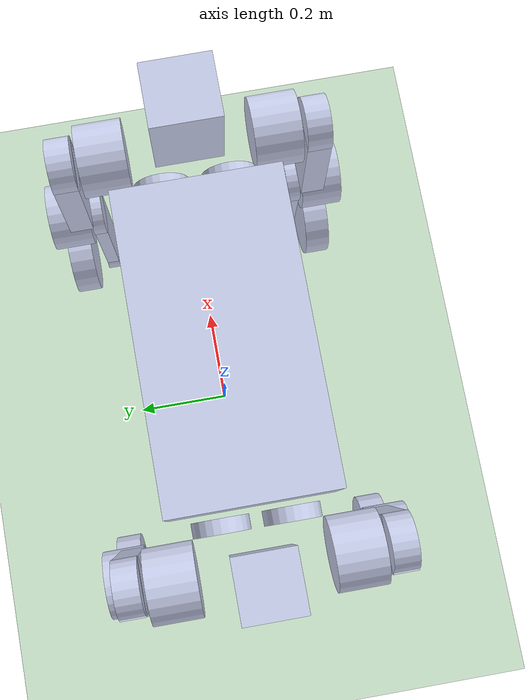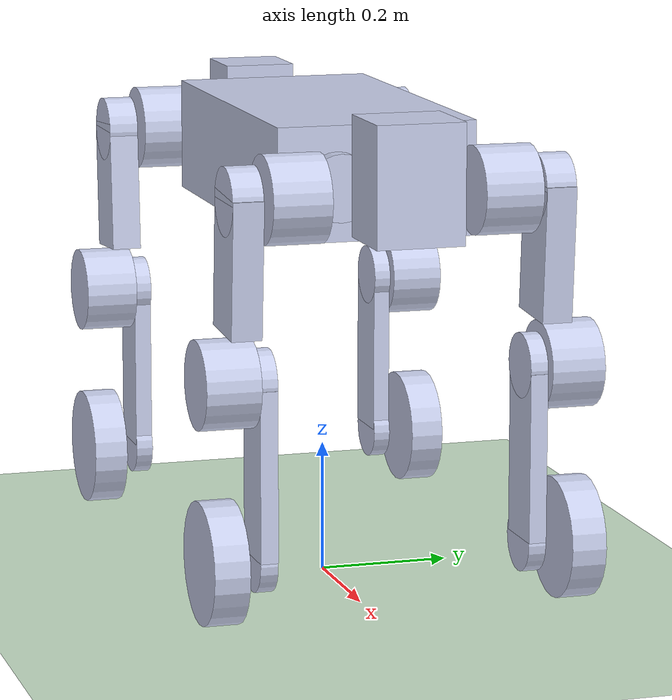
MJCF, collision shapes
<mujoco model="lud1">
  <compiler angle="radian" meshdir="../meshes/"/>

  <default>
      <default class="lud1">
          <geom friction="0.5" margin="0.001"/>
          <joint type="hinge" damping="1" armature="0.1" frictionloss="0.1" limited="true"/>
          <motor ctrlrange="-200 200" />
          <default class="visual">
              <geom type="mesh" contype="0" conaffinity="0" group="2" material="dark"/>
          </default>
          <default class="collision">
              <geom group="0" type="capsule" mass="0" density="0" />
              <default class="foot">
                  <geom type="sphere" priority="1" solimp="0.015 1 0.031" condim="6"  friction="0.8 0.02 0.01" size="0.025" pos="0.019 0 -0.105" quat="1 0 0 0" rgba="0.189804 0.176471 0.129412 1" />
              </default>
          </default>
          <site size="0.001" rgba="0.5 0.5 0.5 0.3" group="4"/>
      </default>
  </default>

  <asset>
    <mesh name="trunk" file="trunk.STL"/>
    <mesh name="FL_link1" file="FL_link1.STL"/>
    <mesh name="FL_link2" file="FL_link2.STL"/>
    <mesh name="FL_link3" file="FL_link3.STL"/>
    <mesh name="FL_foot" file="FL_foot.STL"/>
    <mesh name="FR_link1" file="FR_link1.STL"/>
    <mesh name="FR_link2" file="FR_link2.STL"/>
    <mesh name="FR_link3" file="FR_link3.STL"/>
    <mesh name="FR_foot" file="FR_foot.STL"/>
    <mesh name="HL_link1" file="HL_link1.STL"/>
    <mesh name="HL_link2" file="HL_link2.STL"/>
    <mesh name="HL_link3" file="HL_link3.STL"/>
    <mesh name="HL_foot" file="HL_foot.STL"/>
    <mesh name="HR_link1" file="HR_link1.STL"/>
    <mesh name="HR_link2" file="HR_link2.STL"/>
    <mesh name="HR_link3" file="HR_link3.STL"/>
    <mesh name="HR_foot" file="HR_foot.STL"/>
    <texture name="texplane" type="2d" builtin="checker" rgb1=".2 .3 .4" rgb2=".1 0.15 0.2" width="100" height="100"/>
    <material name="MatPlane" reflectance="0.5" texture="texplane" texrepeat="1 1" texuniform="true"/>
  </asset>

  <worldbody>
    <geom name="floor" friction="1 .1 .1" pos="0 0 0" size="500 500 0.125" type="plane" material="MatPlane" condim="3" conaffinity="1" contype="1" group="2" rgba="0.8 0.9 0.8 1"></geom>
    <light cutoff="100" diffuse="1 1 1" dir="-0 0 -1.3" directional="true" exponent="1" pos="0 0 1.3" specular=".1 .1 .1" castshadow="false"/>
    <body name="trunk" pos="0 0 0.7" childclass="lud1">
      <inertial pos="6.8032439e-03 1.7613329e-03 -4.8894424e-02" quat="0 0 0 1" mass="22.512291" diaginertia="1.8868718e-01 1.1911150e+00 1.2670589e+00" />
      <joint name="floating_base_joint" type="free" limited="false" actuatorfrclimited="false"/>
      <site name='imu' size='0.01' pos='0.0 0 0.0'/>
      <geom type="mesh" contype="0" conaffinity="0" group="1" density="0" rgba="0.792157 0.819608 0.933333 1" mesh="trunk"/>
      <geom size="0.06 0.065 0.0875" pos="0.425 0 -0.025" type="box" rgba="0.792157 0.819608 0.933333 1"/>
      <geom size="0.28 0.15 0.085" pos="0 0 -0.05" type="box" rgba="0.792157 0.819608 0.933333 1"/>
      <geom size="0.055 0.055 0.07" pos="-0.41 0 -0.025" type="box" rgba="0.792157 0.819608 0.933333 1"/>
      <body name="FL_link1" pos="0.28429 0.059957 -0.052238">
        <inertial pos="0.0788815 0.0881322 -0.000103147" quat="0.653114 0.649876 0.279675 0.269971" mass="2.89276" diaginertia="0.010038 0.00917202 0.00538192"/>
        <joint name="FL_joint1" pos="0 0 0" axis="1 0 0" range="-0.785 0.698" actuatorfrcrange="-300 300"/>
        <geom type="mesh" contype="0" conaffinity="0" group="1" density="0" rgba="0.792157 0.819608 0.933333 1" mesh="FL_link1"/>
        <geom size="0.05 0.013" pos="0.012 0 0" quat="0.707388 0 0.706825 0" type="cylinder" rgba="0.792157 0.819608 0.933333 1"/>
        <geom size="0.065 0.043" pos="0.09 0.095 0" quat="0.707388 0.706825 0 0" type="cylinder" rgba="0.792157 0.819608 0.933333 1"/>
        <body name="FL_link2" pos="0.088999 0.13 0">
          <inertial pos="-0.00217294 0.0505098 -0.207263" quat="0.722473 -0.0334015 0.0428731 0.689259" mass="3.0117" diaginertia="0.0309582 0.0290355 0.00408443"/>
          <joint name="FL_joint2" pos="0 0 0" axis="0 1 0" range="-1.57 1.57" actuatorfrcrange="-300 300"/>
          <geom type="mesh" contype="0" conaffinity="0" group="1" density="0" rgba="0.792157 0.819608 0.933333 1" mesh="FL_link2"/>
          <geom size="0.05 0.0225" pos="0 0.04 0" quat="0.707388 0.706825 0 0" type="cylinder" rgba="0.792157 0.819608 0.933333 1"/>
          <geom size="0.05 0.0225 0.1" pos="-0.005 0.04 -0.09" quat="0.999391 0 0.0348994 0" type="box" rgba="0.792157 0.819608 0.933333 1"/>
          <geom size="0.065 0.04" pos="0 0.065 -0.26" quat="0.707388 0.706825 0 0" type="cylinder" rgba="0.792157 0.819608 0.933333 1"/>
          <body name="FL_link3" pos="0 0.032535 -0.26">
            <inertial pos="0.00343905 -0.00804318 -0.168188" quat="0.640627 -0.0241394 0.022993 0.767129" mass="1.66014" diaginertia="0.0208058 0.0203063 0.00135907"/>
            <joint name="FL_joint3" pos="0 0 0" axis="0 1 0" range="-2.5307 1.57" actuatorfrcrange="-300 300"/>
            <geom type="mesh" contype="0" conaffinity="0" group="1" density="0" rgba="0.792157 0.819608 0.933333 1" mesh="FL_link3"/>
            <geom size="0.048 0.013" pos="0 -0.022 0" quat="0.707388 0.706825 0 0" type="cylinder" rgba="0.792157 0.819608 0.933333 1"/>
            <geom size="0.045 0.013 0.125" pos="0.003 -0.022 -0.13" type="box" rgba="0.792157 0.819608 0.933333 1"/>
            <geom size="0.047 0.013" pos="0 -0.022 -0.26" quat="0.707388 0.706825 0 0" type="cylinder" rgba="0.792157 0.819608 0.933333 1"/>
            <body name="FL_foot" pos="0 0.035053 -0.26">
              <inertial pos="0 0.00922002 0" quat="0.499995 0.500005 0.499995 0.500005" mass="2.05431" diaginertia="0.00818673 0.00444444 0.00444444"/>
              <joint name="FL_TO_FOOT" pos="0 0 0" axis="0 1 0" range="-99999999 99999999" actuatorfrcrange="-100 100"/>
              <geom type="mesh" contype="0" conaffinity="0" group="1" density="0" rgba="0.792157 0.819608 0.933333 1" mesh="FL_foot"/>
              <geom size="0.09 0.026" pos="0 0.008 0" quat="0.707388 0.706825 0 0" type="cylinder" rgba="0.792157 0.819608 0.933333 1"/>
            </body>
          </body>
        </body>
      </body>
      <body name="FR_link1" pos="0.28429 -0.062043 -0.052238">
        <inertial pos="0.0788815 -0.0881322 0.000103147" quat="0.279675 0.269971 0.653114 0.649876" mass="2.89276" diaginertia="0.010038 0.00917202 0.00538192"/>
        <joint name="FR_joint1" pos="0 0 0" axis="1 0 0" range="-0.698 0.785" actuatorfrcrange="-300 300"/>
        <geom type="mesh" contype="0" conaffinity="0" group="1" density="0" rgba="0.792157 0.819608 0.933333 1" mesh="FR_link1"/>
        <geom size="0.05 0.013" pos="0.012 0 0" quat="0.707388 0 0.706825 0" type="cylinder" rgba="0.792157 0.819608 0.933333 1"/>
        <geom size="0.065 0.043" pos="0.09 -0.095 0" quat="0.707388 0.706825 0 0" type="cylinder" rgba="0.792157 0.819608 0.933333 1"/>
        <body name="FR_link2" pos="0.088999 -0.13 0">
          <inertial pos="-0.00217294 -0.0505098 -0.207263" quat="0.689259 0.0428731 -0.0334015 0.722473" mass="3.0117" diaginertia="0.0309582 0.0290355 0.00408443"/>
          <joint name="FR_joint2" pos="0 0 0" axis="0 1 0" range="-1.57 1.57" actuatorfrcrange="-300 300"/>
          <geom type="mesh" contype="0" conaffinity="0" group="1" density="0" rgba="0.792157 0.819608 0.933333 1" mesh="FR_link2"/>
          <geom size="0.05 0.0225" pos="0 -0.04 0" quat="0.707388 0.706825 0 0" type="cylinder" rgba="0.792157 0.819608 0.933333 1"/>
          <geom size="0.05 0.0225 0.1" pos="-0.005 -0.04 -0.09" quat="0.999391 0 0.0348994 0" type="box" rgba="0.792157 0.819608 0.933333 1"/>
          <geom size="0.065 0.04" pos="0 -0.065 -0.26" quat="0.707388 0.706825 0 0" type="cylinder" rgba="0.792157 0.819608 0.933333 1"/>
          <body name="FR_link3" pos="0 -0.032535 -0.26">
            <inertial pos="0.00346688 0.00821661 -0.166958" quat="0.766059 0.0227685 -0.0239271 0.641922" mass="1.63999" diaginertia="0.0205896 0.0200894 0.00134656"/>
            <joint name="FR_joint3" pos="0 0 0" axis="0 1 0" range="-2.5307 1.57" actuatorfrcrange="-300 300"/>
            <geom type="mesh" contype="0" conaffinity="0" group="1" density="0" rgba="0.792157 0.819608 0.933333 1" mesh="FR_link3"/>
            <geom size="0.048 0.013" pos="0 0.022 0" quat="0.707388 0.706825 0 0" type="cylinder" rgba="0.792157 0.819608 0.933333 1"/>
            <geom size="0.045 0.013 0.125" pos="0.003 0.022 -0.13" type="box" rgba="0.792157 0.819608 0.933333 1"/>
            <geom size="0.047 0.013" pos="0 0.022 -0.26" quat="0.707388 0.706825 0 0" type="cylinder" rgba="0.792157 0.819608 0.933333 1"/>
            <body name="FR_foot" pos="0 -0.035053 -0.26">
              <inertial pos="0 -0.00922002 0" quat="0.500005 0.499995 0.500005 0.499995" mass="2.05431" diaginertia="0.00818673 0.00444444 0.00444444"/>
              <joint name="FR_TO_FOOT" pos="0 0 0" axis="0 1 0" range="-99999999 99999999" actuatorfrcrange="-100 100"/>
              <geom type="mesh" contype="0" conaffinity="0" group="1" density="0" rgba="0.792157 0.819608 0.933333 1" mesh="FR_foot"/>
              <geom size="0.09 0.026" pos="0 -0.008 0" quat="0.707388 0.706825 0 0" type="cylinder" rgba="0.792157 0.819608 0.933333 1"/>
            </body>
          </body>
        </body>
      </body>
      <body name="HL_link1" pos="-0.29254 0.059957 -0.052238">
        <inertial pos="-0.0788815 0.0881322 0.000103147" quat="0.269971 0.279675 0.649876 0.653114" mass="2.89276" diaginertia="0.010038 0.00917202 0.00538192"/>
        <joint name="HL_joint1" pos="0 0 0" axis="1 0 0" range="-0.785 0.698" actuatorfrcrange="-300 300"/>
        <geom type="mesh" contype="0" conaffinity="0" group="1" density="0" rgba="0.792157 0.819608 0.933333 1" mesh="HL_link1"/>
        <geom size="0.05 0.013" pos="-0.012 0 0" quat="0.707388 0 0.706825 0" type="cylinder" rgba="0.792157 0.819608 0.933333 1"/>
        <geom size="0.065 0.043" pos="-0.09 0.095 0" quat="0.707388 0.706825 0 0" type="cylinder" rgba="0.792157 0.819608 0.933333 1"/>
        <body name="HL_link2" pos="-0.084999 0.13 0">
          <inertial pos="0.00217294 0.0505098 -0.207263" quat="0.689259 -0.0428731 0.0334015 0.722473" mass="3.0117" diaginertia="0.0309582 0.0290355 0.00408443"/>
          <joint name="HL_joint2" pos="0 0 0" axis="0 1 0" range="-1.57 1.57" actuatorfrcrange="-300 300"/>
          <geom type="mesh" contype="0" conaffinity="0" group="1" density="0" rgba="0.792157 0.819608 0.933333 1" mesh="HL_link2"/>
          <geom size="0.05 0.0225" pos="0 0.04 0" quat="0.707388 0.706825 0 0" type="cylinder" rgba="0.792157 0.819608 0.933333 1"/>
          <geom size="0.05 0.0225 0.1" pos="0.005 0.04 -0.09" quat="0.999391 0 -0.0348994 0" type="box" rgba="0.792157 0.819608 0.933333 1"/>
          <geom size="0.065 0.04" pos="0 0.065 -0.26" quat="0.707388 0.706825 0 0" type="cylinder" rgba="0.792157 0.819608 0.933333 1"/>
          <body name="HL_link3" pos="0 0.032535 -0.26">
            <inertial pos="-0.00346688 -0.00821661 -0.166958" quat="0.766059 -0.0227685 0.0239271 0.641922" mass="1.63999" diaginertia="0.0205896 0.0200894 0.00134656"/>
            <joint name="HL_joint3" pos="0 0 0" axis="0 1 0" range="-1.57 2.5307" actuatorfrcrange="-300 300"/>
            <geom type="mesh" contype="0" conaffinity="0" group="1" density="0" rgba="0.792157 0.819608 0.933333 1" mesh="HL_link3"/>
            <geom size="0.048 0.013" pos="0 -0.022 0" quat="0.707388 0.706825 0 0" type="cylinder" rgba="0.792157 0.819608 0.933333 1"/>
            <geom size="0.045 0.013 0.125" pos="-0.003 -0.022 -0.13" type="box" rgba="0.792157 0.819608 0.933333 1"/>
            <geom size="0.047 0.013" pos="0 -0.022 -0.26" quat="0.707388 0.706825 0 0" type="cylinder" rgba="0.792157 0.819608 0.933333 1"/>
            <body name="HL_foot" pos="0 0.035053 -0.26">
              <inertial pos="0 0.00922002 0" quat="0.499995 0.500005 0.499995 0.500005" mass="2.05431" diaginertia="0.00818673 0.00444444 0.00444444"/>
              <joint name="HL_TO_FOOT" pos="0 0 0" axis="0 1 0" range="-99999999 99999999" actuatorfrcrange="-100 100"/>
              <geom type="mesh" contype="0" conaffinity="0" group="1" density="0" rgba="0.792157 0.819608 0.933333 1" mesh="HL_foot"/>
              <geom size="0.09 0.026" pos="0 0.008 0" quat="0.707388 0.706825 0 0" type="cylinder" rgba="0.792157 0.819608 0.933333 1"/>
            </body>
          </body>
        </body>
      </body>
      <body name="HR_link1" pos="-0.29254 -0.062043 -0.052238">
        <inertial pos="-0.0788815 -0.0881322 -0.000103147" quat="0.649876 0.653114 0.269971 0.279675" mass="2.89276" diaginertia="0.010038 0.00917202 0.00538192"/>
        <joint name="HR_joint1" pos="0 0 0" axis="1 0 0" range="-0.698 0.785" actuatorfrcrange="-300 300"/>
        <geom type="mesh" contype="0" conaffinity="0" group="1" density="0" rgba="0.792157 0.819608 0.933333 1" mesh="HR_link1"/>
        <geom size="0.05 0.013" pos="-0.012 0 0" quat="0.707388 0 0.706825 0" type="cylinder" rgba="0.792157 0.819608 0.933333 1"/>
        <geom size="0.065 0.043" pos="-0.09 -0.095 0" quat="0.707388 0.706825 0 0" type="cylinder" rgba="0.792157 0.819608 0.933333 1"/>
        <body name="HR_link2" pos="-0.088999 -0.13 0">
          <inertial pos="0.00217294 -0.0505098 -0.207263" quat="0.722473 0.0334015 -0.0428731 0.689259" mass="3.0117" diaginertia="0.0309582 0.0290355 0.00408443"/>
          <joint name="HR_joint2" pos="0 0 0" axis="0 1 0" range="-1.57 1.57" actuatorfrcrange="-300 300"/>
          <geom type="mesh" contype="0" conaffinity="0" group="1" density="0" rgba="0.792157 0.819608 0.933333 1" mesh="HR_link2"/>
          <geom size="0.05 0.0225" pos="0 -0.04 0" quat="0.707388 0.706825 0 0" type="cylinder" rgba="0.792157 0.819608 0.933333 1"/>
          <geom size="0.05 0.0225 0.1" pos="0.005 -0.04 -0.09" quat="0.999391 0 -0.0348994 0" type="box" rgba="0.792157 0.819608 0.933333 1"/>
          <geom size="0.065 0.04" pos="0 -0.065 -0.26" quat="0.707388 0.706825 0 0" type="cylinder" rgba="0.792157 0.819608 0.933333 1"/>
          <body name="HR_link3" pos="0 -0.032535 -0.26">
            <inertial pos="-0.00343905 0.00804318 -0.168188" quat="0.640627 0.0241394 -0.022993 0.767129" mass="1.66014" diaginertia="0.0208058 0.0203063 0.00135907"/>
            <joint name="HR_joint3" pos="0 0 0" axis="0 1 0" range="-1.57 2.5307" actuatorfrcrange="-300 300"/>
            <geom type="mesh" contype="0" conaffinity="0" group="1" density="0" rgba="0.792157 0.819608 0.933333 1" mesh="HR_link3"/>
            <geom size="0.048 0.013" pos="0 0.022 0" quat="0.707388 0.706825 0 0" type="cylinder" rgba="0.792157 0.819608 0.933333 1"/>
            <geom size="0.045 0.013 0.125" pos="-0.003 0.022 -0.13" type="box" rgba="0.792157 0.819608 0.933333 1"/>
            <geom size="0.047 0.013" pos="0 0.022 -0.26" quat="0.707388 0.706825 0 0" type="cylinder" rgba="0.792157 0.819608 0.933333 1"/>
            <body name="HR_foot" pos="0 -0.035053 -0.26">
              <inertial pos="0 -0.00922002 0" quat="0.500005 0.499995 0.500005 0.499995" mass="2.05431" diaginertia="0.00818673 0.00444444 0.00444444"/>
              <joint name="HR_TO_FOOT" pos="0 0 0" axis="0 1 0" range="-99999999 99999999" actuatorfrcrange="-100 100"/>
              <geom type="mesh" contype="0" conaffinity="0" group="1" density="0" rgba="0.792157 0.819608 0.933333 1" mesh="HR_foot"/>
              <geom size="0.09 0.026" pos="0 -0.008 0" quat="0.707388 0.706825 0 0" type="cylinder" rgba="0.792157 0.819608 0.933333 1"/>
            </body>
          </body>
        </body>
      </body>
    </body>
  </worldbody>

  <actuator>
    <motor name="FL_joint1" joint="FL_joint1" gear="1" ctrllimited="true" ctrlrange="-100 100"/>
    <motor name="FL_joint2" joint="FL_joint2" gear="1" ctrllimited="true" ctrlrange="-100 100"/>
    <motor name="FL_joint3" joint="FL_joint3" gear="1" ctrllimited="true" ctrlrange="-100 100" />
    <motor name="FL_TO_FOOT" joint="FL_TO_FOOT" gear="1" ctrllimited="true" ctrlrange="-100 100"/>

    <motor name="FR_joint1" joint="FR_joint1" gear="1" ctrllimited="true" ctrlrange="-100 100"/>
    <motor name="FR_joint2" joint="FR_joint2" gear="1" ctrllimited="true" ctrlrange="-100 100"/>
    <motor name="FR_joint3" joint="FR_joint3" gear="1" ctrllimited="true" ctrlrange="-100 100"/>
    <motor name="FR_TO_FOOT" joint="FR_TO_FOOT" gear="1" ctrllimited="true" ctrlrange="-100 100" />

    <motor name="HL_joint1" joint="HL_joint1" gear="1" ctrllimited="true" ctrlrange="-100 100" />
    <motor name="HL_joint2" joint="HL_joint2" gear="1" ctrllimited="true" ctrlrange="-100 100" />
    <motor name="HL_joint3" joint="HL_joint3" gear="1" ctrllimited="true" ctrlrange="-100 100" />
    <motor name="HL_TO_FOOT" joint="HL_TO_FOOT" gear="1" ctrllimited="true" ctrlrange="-100 100" />

    <motor name="HR_joint1" joint="HR_joint1" gear="1" ctrllimited="true" ctrlrange="-100 100" />
    <motor name="HR_joint2" joint="HR_joint2" gear="1" ctrllimited="true" ctrlrange="-100 100" />
    <motor name="HR_joint3" joint="HR_joint3" gear="1" ctrllimited="true" ctrlrange="-100 100" />
    <motor name="HR_TO_FOOT" joint="HR_TO_FOOT" gear="1" ctrllimited="true" ctrlrange="-100 100" />
  </actuator>

  <sensor>
    <framequat     name='orientation' objtype='site' noise='0.001' objname='imu'/>
    <framepos     name='position' objtype='site' noise='0.001' objname='imu'/>
    <gyro          name='angular-velocity'    site='imu' noise='0.005' cutoff='34.9'/>
    <velocimeter   name='linear-velocity'     site='imu' noise='0.001' cutoff='30'/>
    <accelerometer name='linear-acceleration' site='imu' noise='0.005' cutoff='157'/>
    <magnetometer  name='magnetometer'        site='imu'/>

    <jointactuatorfrc name="FL_joint1_force" joint="FL_joint1"/>
    <jointactuatorfrc name="FL_joint2_force" joint="FL_joint2"/>
    <jointactuatorfrc name="FL_joint3_force" joint="FL_joint3"/>
    <jointactuatorfrc name="FL_TO_FOOT_force" joint="FL_TO_FOOT"/>

    <jointactuatorfrc name="FR_joint1_force" joint="FR_joint1"/>
    <jointactuatorfrc name="FR_joint2_force" joint="FR_joint2"/>
    <jointactuatorfrc name="FR_joint3_force" joint="FR_joint3"/>
    <jointactuatorfrc name="FR_TO_FOOT_force" joint="FR_TO_FOOT"/>

    <jointactuatorfrc name="HL_joint1_force" joint="HL_joint1"/>
    <jointactuatorfrc name="HL_joint2_force" joint="HL_joint2"/>
    <jointactuatorfrc name="HL_joint3_force" joint="HL_joint3"/>
    <jointactuatorfrc name="HL_TO_FOOT_force" joint="HL_TO_FOOT"/>

    <jointactuatorfrc name="HR_joint1_force" joint="HR_joint1"/>
    <jointactuatorfrc name="HR_joint2_force" joint="HR_joint2"/>
    <jointactuatorfrc name="HR_joint3_force" joint="HR_joint3"/>
    <jointactuatorfrc name="HR_TO_FOOT_force" joint="HR_TO_FOOT"/>
  </sensor>
</mujoco>
